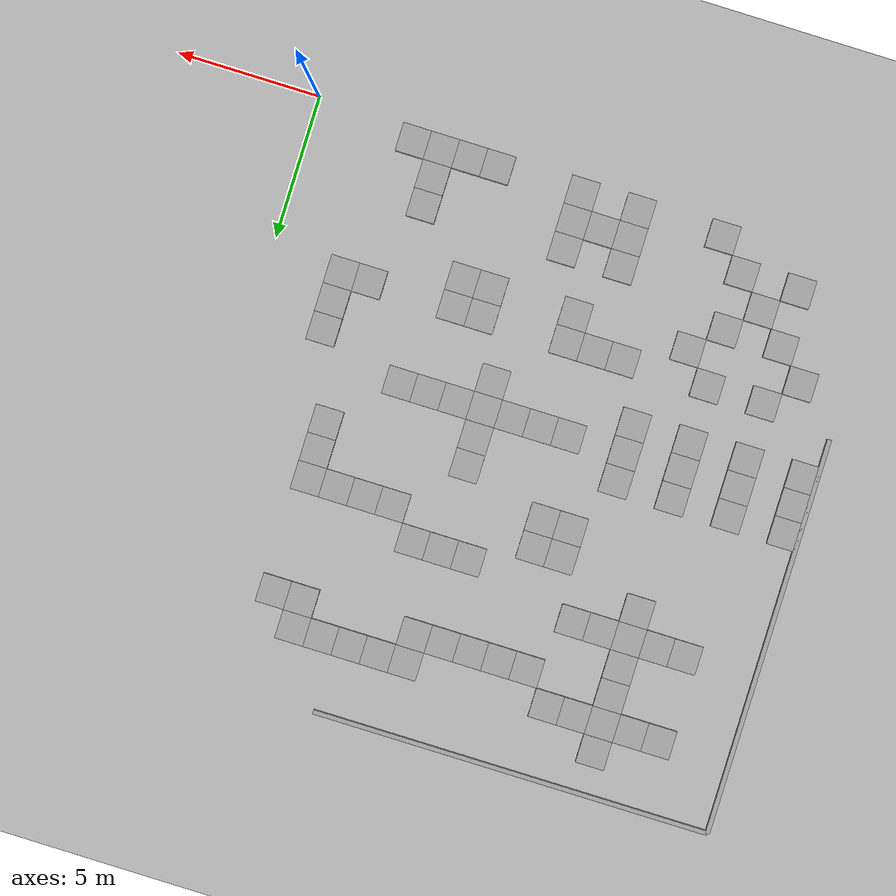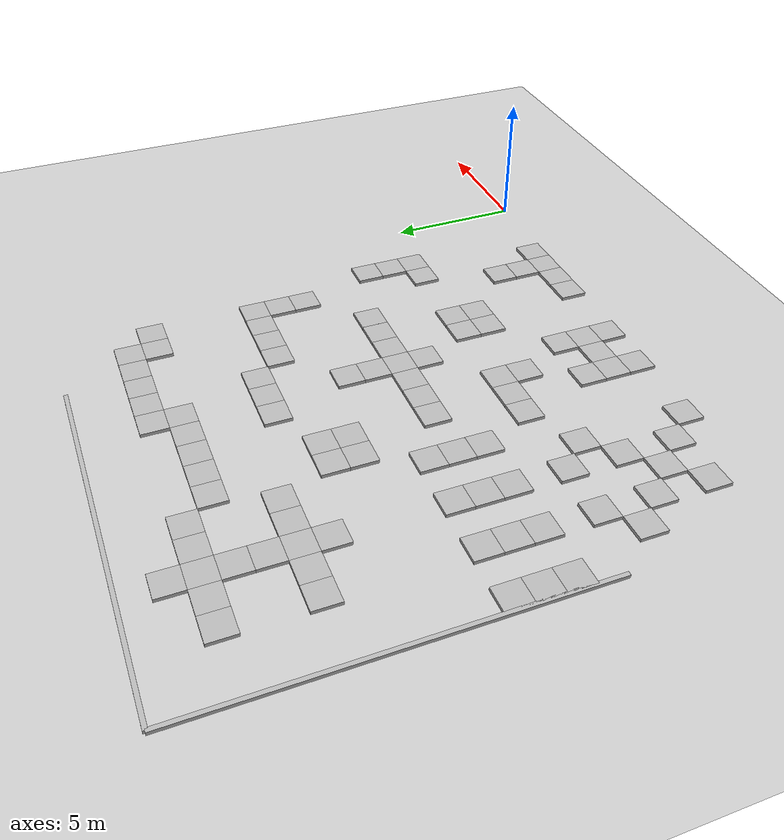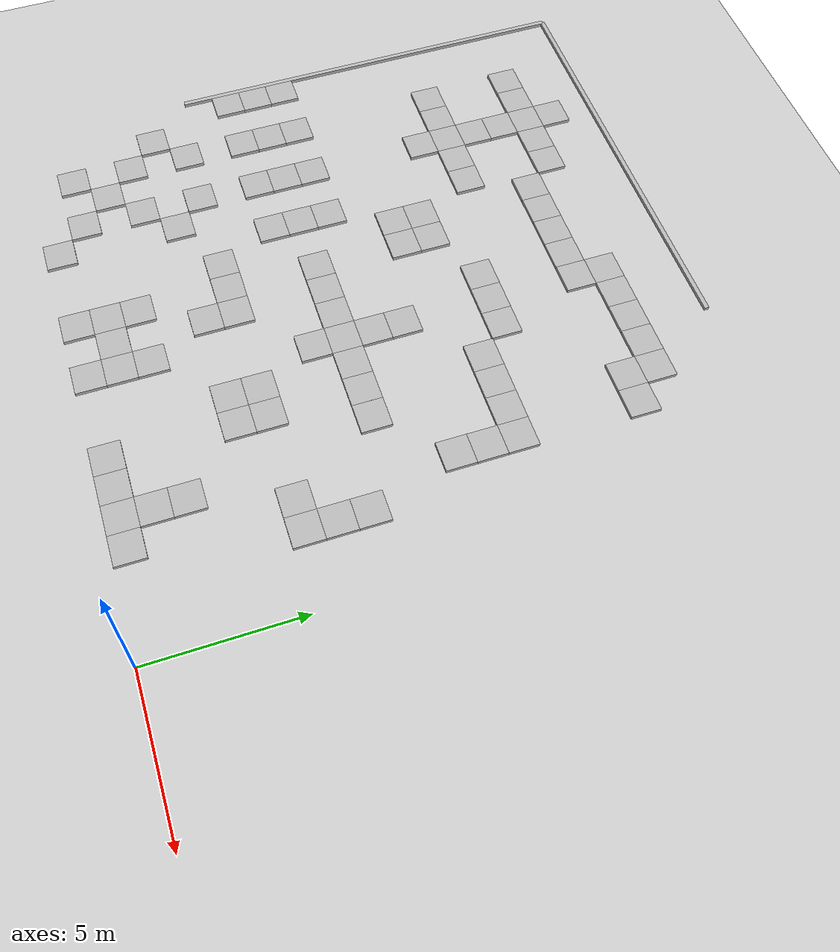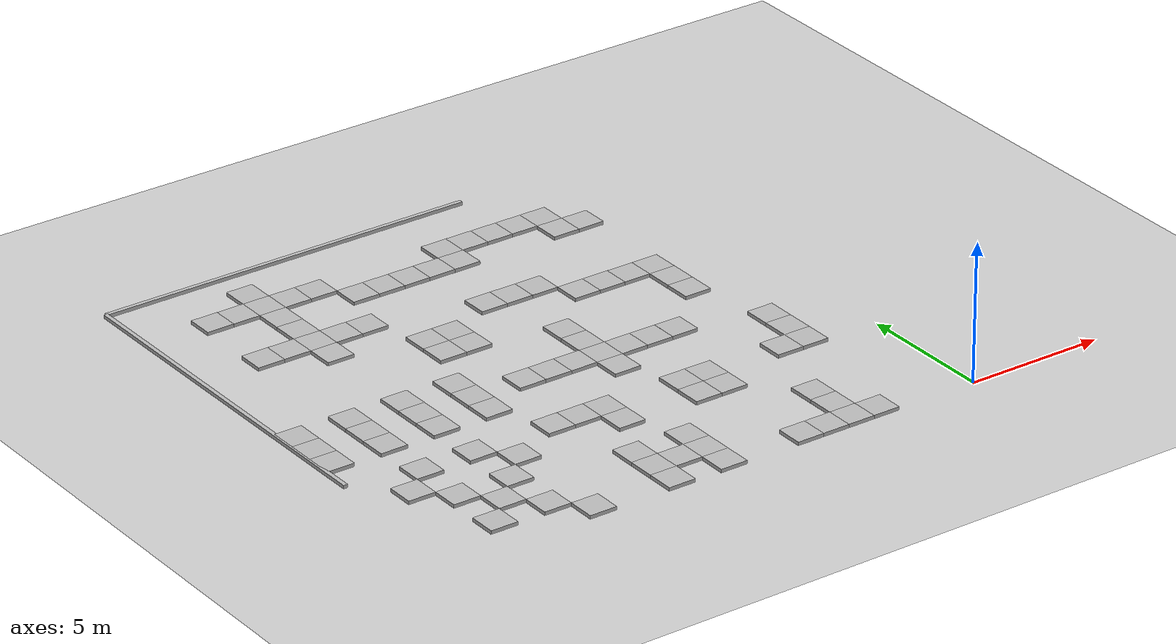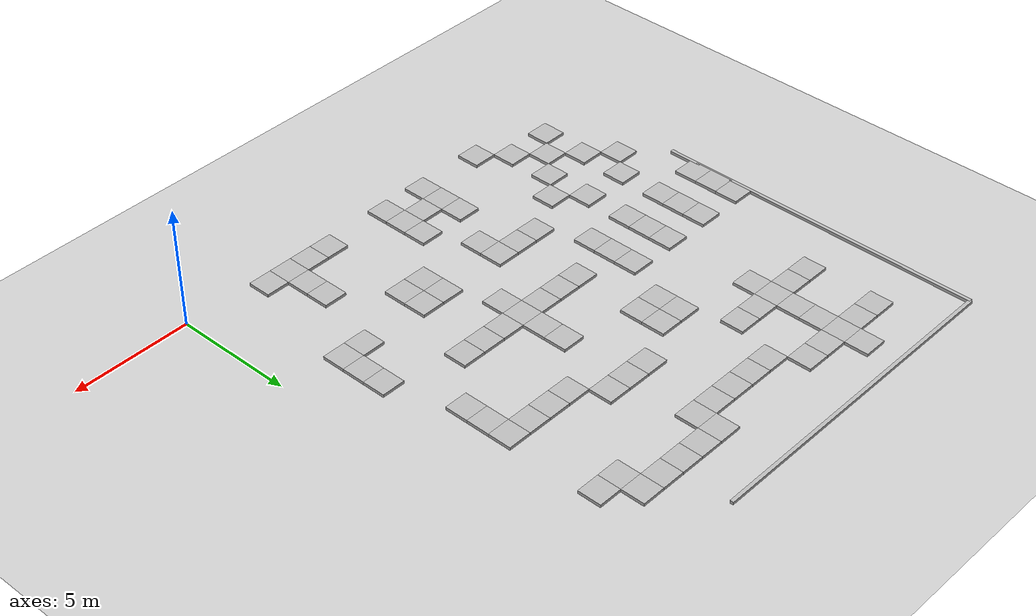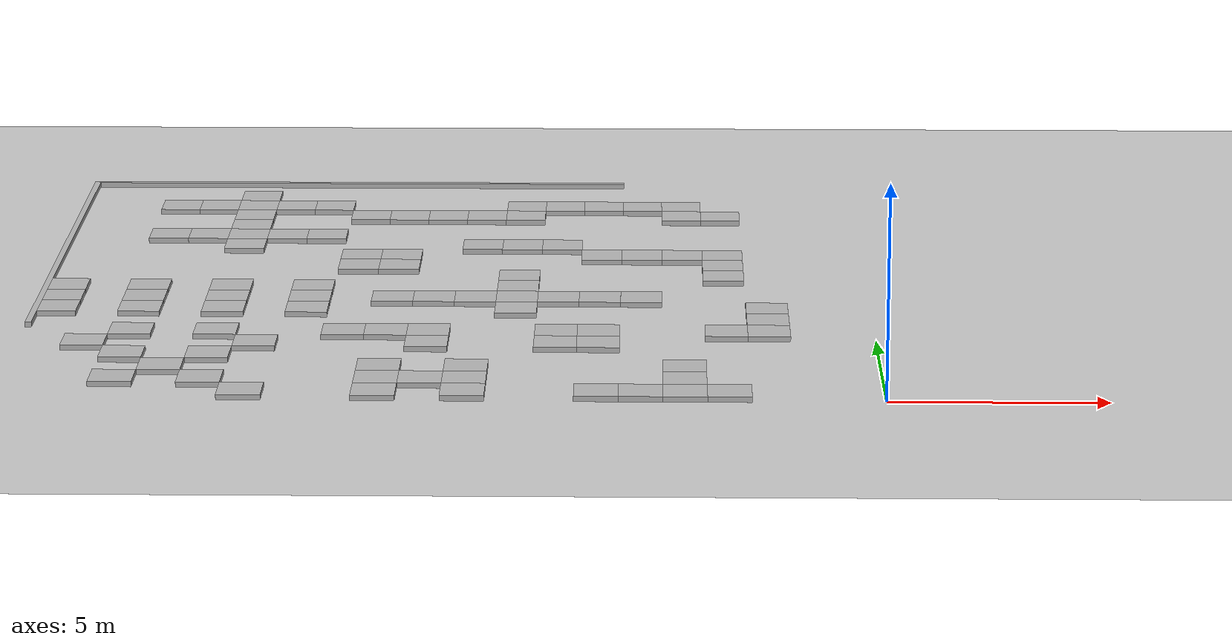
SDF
<sdf version="1.7">
 <world name="default">
  <model name="ground_plane">
   <static>1</static>
   <link name="link">
    <collision name="collision">
     <geometry><plane><normal>0 0 1</normal><size>100 100</size></plane></geometry>
     <surface>
      <contact><collide_bitmask>65535</collide_bitmask></contact>
      <friction><ode><mu>100</mu><mu2>50</mu2></ode></friction>
     </surface>
    </collision>
    <visual name="visual">
     <cast_shadows>0</cast_shadows>
     <geometry><plane><normal>0 0 1</normal><size>100 100</size></plane></geometry>
     <material>
      <script><uri>file://media/materials/scripts/gazebo.material</uri><name>Gazebo/Grey</name></script>
     </material>
    </visual>
   </link>
  </model>
  <model name="concrete_cube_1m">
   <static>1</static>
   <link name="link">
    <collision name="concrete_cube_1m">
     <pose>-0 0 0.3 0 -0 0</pose>
     <geometry><box><size>1 1 0.6</size></box></geometry>
    </collision>
    <visual name="concrete_cube_1m_visual">
     <geometry><mesh><uri>model://concrete_cube_1m/meshes/concrete_cube_1m.dae</uri></mesh></geometry>
    </visual>
   </link>
   <pose>-2.5 6.5 0 0 -0 0</pose>
  </model>
  <model name="concrete_cube_1m_0">
   <static>1</static>
   <link name="link">
    <collision name="concrete_cube_1m">
     <pose>-0 0 0.3 0 -0 0</pose>
     <geometry><box><size>1 1 0.6</size></box></geometry>
    </collision>
    <visual name="concrete_cube_1m_visual">
     <geometry><mesh><uri>model://concrete_cube_1m/meshes/concrete_cube_1m.dae</uri></mesh></geometry>
    </visual>
   </link>
   <pose>-6.5 4.5 0 0 -0 0</pose>
  </model>
  <model name="concrete_cube_1m_1">
   <static>1</static>
   <link name="link">
    <collision name="concrete_cube_1m">
     <pose>-0 0 0.3 0 -0 0</pose>
     <geometry><box><size>1 1 0.6</size></box></geometry>
    </collision>
    <visual name="concrete_cube_1m_visual">
     <geometry><mesh><uri>model://concrete_cube_1m/meshes/concrete_cube_1m.dae</uri></mesh></geometry>
    </visual>
   </link>
   <pose>-2.5 5.5 0 0 -0 0</pose>
  </model>
  <model name="concrete_cube_1m_3">
   <static>1</static>
   <link name="link">
    <collision name="concrete_cube_1m">
     <pose>-0 0 0.3 0 -0 0</pose>
     <geometry><box><size>1 1 0.6</size></box></geometry>
    </collision>
    <visual name="concrete_cube_1m_visual">
     <geometry><mesh><uri>model://concrete_cube_1m/meshes/concrete_cube_1m.dae</uri></mesh></geometry>
    </visual>
   </link>
   <pose>-4.5 0.5 0 0 -0 0</pose>
  </model>
  <model name="concrete_cube_1m_43">
   <static>1</static>
   <link name="link">
    <collision name="concrete_cube_1m">
     <pose>-0 0 0.3 0 -0 0</pose>
     <geometry><box><size>1 1 0.6</size></box></geometry>
    </collision>
    <visual name="concrete_cube_1m_visual">
     <geometry><mesh><uri>model://concrete_cube_1m/meshes/concrete_cube_1m.dae</uri></mesh></geometry>
    </visual>
   </link>
   <pose>-3.5 5.5 0 0 -0 0</pose>
  </model>
  <model name="concrete_cube_1m_44">
   <static>1</static>
   <link name="link">
    <collision name="concrete_cube_1m">
     <pose>-0 0 0.3 0 -0 0</pose>
     <geometry><box><size>1 1 0.6</size></box></geometry>
    </collision>
    <visual name="concrete_cube_1m_visual">
     <geometry><mesh><uri>model://concrete_cube_1m/meshes/concrete_cube_1m.dae</uri></mesh></geometry>
    </visual>
   </link>
   <pose>-2.5 7.5 0 0 -0 0</pose>
  </model>
  <model name="concrete_cube_1m_46">
   <static>1</static>
   <link name="link">
    <collision name="concrete_cube_1m">
     <pose>-0 0 0.3 0 -0 0</pose>
     <geometry><box><size>1 1 0.6</size></box></geometry>
    </collision>
    <visual name="concrete_cube_1m_visual">
     <geometry><mesh><uri>model://concrete_cube_1m/meshes/concrete_cube_1m.dae</uri></mesh></geometry>
    </visual>
   </link>
   <pose>-3.5 0.5 0 0 -0 0</pose>
  </model>
  <model name="concrete_cube_1m_47">
   <static>1</static>
   <link name="link">
    <collision name="concrete_cube_1m">
     <pose>-0 0 0.3 0 -0 0</pose>
     <geometry><box><size>1 1 0.6</size></box></geometry>
    </collision>
    <visual name="concrete_cube_1m_visual">
     <geometry><mesh><uri>model://concrete_cube_1m/meshes/concrete_cube_1m.dae</uri></mesh></geometry>
    </visual>
   </link>
   <pose>-4.5 1.5 0 0 -0 0</pose>
  </model>
  <model name="concrete_cube_1m_48">
   <static>1</static>
   <link name="link">
    <collision name="concrete_cube_1m">
     <pose>-0 0 0.3 0 -0 0</pose>
     <geometry><box><size>1 1 0.6</size></box></geometry>
    </collision>
    <visual name="concrete_cube_1m_visual">
     <geometry><mesh><uri>model://concrete_cube_1m/meshes/concrete_cube_1m.dae</uri></mesh></geometry>
    </visual>
   </link>
   <pose>-4.5 2.5 0 0 -0 0</pose>
  </model>
  <model name="concrete_cube_1m_49">
   <static>1</static>
   <link name="link">
    <collision name="concrete_cube_1m">
     <pose>-0 0 0.3 0 -0 0</pose>
     <geometry><box><size>1 1 0.6</size></box></geometry>
    </collision>
    <visual name="concrete_cube_1m_visual">
     <geometry><mesh><uri>model://concrete_cube_1m/meshes/concrete_cube_1m.dae</uri></mesh></geometry>
    </visual>
   </link>
   <pose>-5.5 0.5 0 0 -0 0</pose>
  </model>
  <model name="concrete_cube_1m_50">
   <static>1</static>
   <link name="link">
    <collision name="concrete_cube_1m">
     <pose>-0 0 0.3 0 -0 0</pose>
     <geometry><box><size>1 1 0.6</size></box></geometry>
    </collision>
    <visual name="concrete_cube_1m_visual">
     <geometry><mesh><uri>model://concrete_cube_1m/meshes/concrete_cube_1m.dae</uri></mesh></geometry>
    </visual>
   </link>
   <pose>-6.5 0.5 0 0 -0 0</pose>
  </model>
  <model name="concrete_cube_1m_51">
   <static>1</static>
   <link name="link">
    <collision name="concrete_cube_1m">
     <pose>-0 0 0.3 0 -0 0</pose>
     <geometry><box><size>1 1 0.6</size></box></geometry>
    </collision>
    <visual name="concrete_cube_1m_visual">
     <geometry><mesh><uri>model://concrete_cube_1m/meshes/concrete_cube_1m.dae</uri></mesh></geometry>
    </visual>
   </link>
   <pose>-6.5 5.5 0 0 -0 0</pose>
  </model>
  <model name="concrete_cube_1m_52">
   <static>1</static>
   <link name="link">
    <collision name="concrete_cube_1m">
     <pose>-0 0 0.3 0 -0 0</pose>
     <geometry><box><size>1 1 0.6</size></box></geometry>
    </collision>
    <visual name="concrete_cube_1m_visual">
     <geometry><mesh><uri>model://concrete_cube_1m/meshes/concrete_cube_1m.dae</uri></mesh></geometry>
    </visual>
   </link>
   <pose>-7.5 4.5 0 0 -0 0</pose>
  </model>
  <model name="concrete_cube_1m_53">
   <static>1</static>
   <link name="link">
    <collision name="concrete_cube_1m">
     <pose>-0 0 0.3 0 -0 0</pose>
     <geometry><box><size>1 1 0.6</size></box></geometry>
    </collision>
    <visual name="concrete_cube_1m_visual">
     <geometry><mesh><uri>model://concrete_cube_1m/meshes/concrete_cube_1m.dae</uri></mesh></geometry>
    </visual>
   </link>
   <pose>-7.5 5.5 0 0 -0 0</pose>
  </model>
  <model name="concrete_cube_1m_54">
   <static>1</static>
   <link name="link">
    <collision name="concrete_cube_1m">
     <pose>-0 0 0.3 0 -0 0</pose>
     <geometry><box><size>1 1 0.6</size></box></geometry>
    </collision>
    <visual name="concrete_cube_1m_visual">
     <geometry><mesh><uri>model://concrete_cube_1m/meshes/concrete_cube_1m.dae</uri></mesh></geometry>
    </visual>
   </link>
   <pose>-8.5 8.5 0 0 -0 0</pose>
  </model>
  <model name="concrete_cube_1m_55">
   <static>1</static>
   <link name="link">
    <collision name="concrete_cube_1m">
     <pose>-0 0 0.3 0 -0 0</pose>
     <geometry><box><size>1 1 0.6</size></box></geometry>
    </collision>
    <visual name="concrete_cube_1m_visual">
     <geometry><mesh><uri>model://concrete_cube_1m/meshes/concrete_cube_1m.dae</uri></mesh></geometry>
    </visual>
   </link>
   <pose>-8.5 7.5 0 0 -0 0</pose>
  </model>
  <model name="concrete_cube_1m_56">
   <static>1</static>
   <link name="link">
    <collision name="concrete_cube_1m">
     <pose>-0 0 0.3 0 -0 0</pose>
     <geometry><box><size>1 1 0.6</size></box></geometry>
    </collision>
    <visual name="concrete_cube_1m_visual">
     <geometry><mesh><uri>model://concrete_cube_1m/meshes/concrete_cube_1m.dae</uri></mesh></geometry>
    </visual>
   </link>
   <pose>-7.5 8.5 0 0 -0 0</pose>
  </model>
  <model name="concrete_cube_1m_57">
   <static>1</static>
   <link name="link">
    <collision name="concrete_cube_1m">
     <pose>-0 0 0.3 0 -0 0</pose>
     <geometry><box><size>1 1 0.6</size></box></geometry>
    </collision>
    <visual name="concrete_cube_1m_visual">
     <geometry><mesh><uri>model://concrete_cube_1m/meshes/concrete_cube_1m.dae</uri></mesh></geometry>
    </visual>
   </link>
   <pose>-6.50041 8.5 0 0 -0 0</pose>
  </model>
  <model name="concrete_cube_1m_58">
   <static>1</static>
   <link name="link">
    <collision name="concrete_cube_1m">
     <pose>-0 0 0.3 0 -0 0</pose>
     <geometry><box><size>1 1 0.6</size></box></geometry>
    </collision>
    <visual name="concrete_cube_1m_visual">
     <geometry><mesh><uri>model://concrete_cube_1m/meshes/concrete_cube_1m.dae</uri></mesh></geometry>
    </visual>
   </link>
   <pose>-5.5 8.5 0 0 -0 0</pose>
  </model>
  <model name="concrete_cube_1m_60">
   <static>1</static>
   <link name="link">
    <collision name="concrete_cube_1m">
     <pose>-0 0 0.3 0 -0 0</pose>
     <geometry><box><size>1 1 0.6</size></box></geometry>
    </collision>
    <visual name="concrete_cube_1m_visual">
     <geometry><mesh><uri>model://concrete_cube_1m/meshes/concrete_cube_1m.dae</uri></mesh></geometry>
    </visual>
   </link>
   <pose>-9.5 1.5 0 0 -0 0</pose>
  </model>
  <model name="concrete_cube_1m_61">
   <static>1</static>
   <link name="link">
    <collision name="concrete_cube_1m">
     <pose>-0 0 0.3 0 -0 0</pose>
     <geometry><box><size>1 1 0.6</size></box></geometry>
    </collision>
    <visual name="concrete_cube_1m_visual">
     <geometry><mesh><uri>model://concrete_cube_1m/meshes/concrete_cube_1m.dae</uri></mesh></geometry>
    </visual>
   </link>
   <pose>-9.5 2.5 0 0 -0 0</pose>
  </model>
  <model name="concrete_cube_1m_62">
   <static>1</static>
   <link name="link">
    <collision name="concrete_cube_1m">
     <pose>-0 0 0.3 0 -0 0</pose>
     <geometry><box><size>1 1 0.6</size></box></geometry>
    </collision>
    <visual name="concrete_cube_1m_visual">
     <geometry><mesh><uri>model://concrete_cube_1m/meshes/concrete_cube_1m.dae</uri></mesh></geometry>
    </visual>
   </link>
   <pose>-9.5 0.5 0 0 -0 0</pose>
  </model>
  <model name="concrete_cube_1m_110">
   <static>1</static>
   <link name="link">
    <collision name="concrete_cube_1m">
     <pose>-0 0 0.3 0 -0 0</pose>
     <geometry><box><size>1 1 0.6</size></box></geometry>
    </collision>
    <visual name="concrete_cube_1m_visual">
     <geometry><mesh><uri>model://concrete_cube_1m/meshes/concrete_cube_1m.dae</uri></mesh></geometry>
    </visual>
   </link>
   <pose>-14.5 0.5 0 0 -0 0</pose>
  </model>
  <model name="concrete_cube_1m_111">
   <static>1</static>
   <link name="link">
    <collision name="concrete_cube_1m">
     <pose>-0 0 0.3 0 -0 0</pose>
     <geometry><box><size>1 1 0.6</size></box></geometry>
    </collision>
    <visual name="concrete_cube_1m_visual">
     <geometry><mesh><uri>model://concrete_cube_1m/meshes/concrete_cube_1m.dae</uri></mesh></geometry>
    </visual>
   </link>
   <pose>-14.5 14.5 0 0 -0 0</pose>
  </model>
  <model name="concrete_cube_1m_112">
   <static>1</static>
   <link name="link">
    <collision name="concrete_cube_1m">
     <pose>-0 0 0.3 0 -0 0</pose>
     <geometry><box><size>1 1 0.6</size></box></geometry>
    </collision>
    <visual name="concrete_cube_1m_visual">
     <geometry><mesh><uri>model://concrete_cube_1m/meshes/concrete_cube_1m.dae</uri></mesh></geometry>
    </visual>
   </link>
   <pose>-13.5 14.5 0 0 -0 0</pose>
  </model>
  <model name="concrete_cube_1m_152">
   <static>1</static>
   <link name="link">
    <collision name="concrete_cube_1m">
     <pose>-0 0 0.3 0 -0 0</pose>
     <geometry><box><size>1 1 0.6</size></box></geometry>
    </collision>
    <visual name="concrete_cube_1m_visual">
     <geometry><mesh><uri>model://concrete_cube_1m/meshes/concrete_cube_1m.dae</uri></mesh></geometry>
    </visual>
   </link>
   <pose>-10.5 1.5 0 0 -0 0</pose>
  </model>
  <model name="concrete_cube_1m_153">
   <static>1</static>
   <link name="link">
    <collision name="concrete_cube_1m">
     <pose>-0 0 0.3 0 -0 0</pose>
     <geometry><box><size>1 1 0.6</size></box></geometry>
    </collision>
    <visual name="concrete_cube_1m_visual">
     <geometry><mesh><uri>model://concrete_cube_1m/meshes/concrete_cube_1m.dae</uri></mesh></geometry>
    </visual>
   </link>
   <pose>-11.5 1.5 0 0 -0 0</pose>
  </model>
  <model name="concrete_cube_1m_154">
   <static>1</static>
   <link name="link">
    <collision name="concrete_cube_1m">
     <pose>-0 0 0.3 0 -0 0</pose>
     <geometry><box><size>1 1 0.6</size></box></geometry>
    </collision>
    <visual name="concrete_cube_1m_visual">
     <geometry><mesh><uri>model://concrete_cube_1m/meshes/concrete_cube_1m.dae</uri></mesh></geometry>
    </visual>
   </link>
   <pose>-11.5 2.5 0 0 -0 0</pose>
  </model>
  <model name="concrete_cube_1m_155">
   <static>1</static>
   <link name="link">
    <collision name="concrete_cube_1m">
     <pose>-0 0 0.3 0 -0 0</pose>
     <geometry><box><size>1 1 0.6</size></box></geometry>
    </collision>
    <visual name="concrete_cube_1m_visual">
     <geometry><mesh><uri>model://concrete_cube_1m/meshes/concrete_cube_1m.dae</uri></mesh></geometry>
    </visual>
   </link>
   <pose>-11.5 5.5 0 0 -0 0</pose>
  </model>
  <model name="concrete_cube_1m_156">
   <static>1</static>
   <link name="link">
    <collision name="concrete_cube_1m">
     <pose>-0 0 0.3 0 -0 0</pose>
     <geometry><box><size>1 1 0.6</size></box></geometry>
    </collision>
    <visual name="concrete_cube_1m_visual">
     <geometry><mesh><uri>model://concrete_cube_1m/meshes/concrete_cube_1m.dae</uri></mesh></geometry>
    </visual>
   </link>
   <pose>-8.5 9.5 0 0 -0 0</pose>
  </model>
  <model name="concrete_cube_1m_157">
   <static>1</static>
   <link name="link">
    <collision name="concrete_cube_1m">
     <pose>-0 0 0.3 0 -0 0</pose>
     <geometry><box><size>1 1 0.6</size></box></geometry>
    </collision>
    <visual name="concrete_cube_1m_visual">
     <geometry><mesh><uri>model://concrete_cube_1m/meshes/concrete_cube_1m.dae</uri></mesh></geometry>
    </visual>
   </link>
   <pose>-9.5 8.5 0 0 -0 0</pose>
  </model>
  <model name="concrete_cube_1m_158">
   <static>1</static>
   <link name="link">
    <collision name="concrete_cube_1m">
     <pose>-0 0 0.3 0 -0 0</pose>
     <geometry><box><size>1 1 0.6</size></box></geometry>
    </collision>
    <visual name="concrete_cube_1m_visual">
     <geometry><mesh><uri>model://concrete_cube_1m/meshes/concrete_cube_1m.dae</uri></mesh></geometry>
    </visual>
   </link>
   <pose>-10.5 8.5 0 0 -0 0</pose>
  </model>
  <model name="concrete_cube_1m_159">
   <static>1</static>
   <link name="link">
    <collision name="concrete_cube_1m">
     <pose>-0 0 0.3 0 -0 0</pose>
     <geometry><box><size>1 1 0.6</size></box></geometry>
    </collision>
    <visual name="concrete_cube_1m_visual">
     <geometry><mesh><uri>model://concrete_cube_1m/meshes/concrete_cube_1m.dae</uri></mesh></geometry>
    </visual>
   </link>
   <pose>-11.5 8.5 0 0 -0 0</pose>
  </model>
  <model name="concrete_cube_1m_163">
   <static>1</static>
   <link name="link">
    <collision name="concrete_cube_1m">
     <pose>-0 0 0.3 0 -0 0</pose>
     <geometry><box><size>1 1 0.6</size></box></geometry>
    </collision>
    <visual name="concrete_cube_1m_visual">
     <geometry><mesh><uri>model://concrete_cube_1m/meshes/concrete_cube_1m.dae</uri></mesh></geometry>
    </visual>
   </link>
   <pose>-3.5 10.5 0 0 -0 0</pose>
  </model>
  <model name="concrete_cube_1m_164">
   <static>1</static>
   <link name="link">
    <collision name="concrete_cube_1m">
     <pose>-0 0 0.3 0 -0 0</pose>
     <geometry><box><size>1 1 0.6</size></box></geometry>
    </collision>
    <visual name="concrete_cube_1m_visual">
     <geometry><mesh><uri>model://concrete_cube_1m/meshes/concrete_cube_1m.dae</uri></mesh></geometry>
    </visual>
   </link>
   <pose>-3.5 11.5 0 0 -0 0</pose>
  </model>
  <model name="concrete_cube_1m_165">
   <static>1</static>
   <link name="link">
    <collision name="concrete_cube_1m">
     <pose>-0 0 0.3 0 -0 0</pose>
     <geometry><box><size>1 1 0.6</size></box></geometry>
    </collision>
    <visual name="concrete_cube_1m_visual">
     <geometry><mesh><uri>model://concrete_cube_1m/meshes/concrete_cube_1m.dae</uri></mesh></geometry>
    </visual>
   </link>
   <pose>-3.5 12.5 0 0 -0 0</pose>
  </model>
  <model name="concrete_cube_1m_166">
   <static>1</static>
   <link name="link">
    <collision name="concrete_cube_1m">
     <pose>-0 0 0.3 0 -0 0</pose>
     <geometry><box><size>1 1 0.6</size></box></geometry>
    </collision>
    <visual name="concrete_cube_1m_visual">
     <geometry><mesh><uri>model://concrete_cube_1m/meshes/concrete_cube_1m.dae</uri></mesh></geometry>
    </visual>
   </link>
   <pose>-4.5 12.5 0 0 -0 0</pose>
  </model>
  <model name="concrete_cube_1m_167">
   <static>1</static>
   <link name="link">
    <collision name="concrete_cube_1m">
     <pose>-0 0 0.3 0 -0 0</pose>
     <geometry><box><size>1 1 0.6</size></box></geometry>
    </collision>
    <visual name="concrete_cube_1m_visual">
     <geometry><mesh><uri>model://concrete_cube_1m/meshes/concrete_cube_1m.dae</uri></mesh></geometry>
    </visual>
   </link>
   <pose>-5.5 12.5 0 0 -0 0</pose>
  </model>
  <model name="concrete_cube_1m_168">
   <static>1</static>
   <link name="link">
    <collision name="concrete_cube_1m">
     <pose>-0 0 0.3 0 -0 0</pose>
     <geometry><box><size>1 1 0.6</size></box></geometry>
    </collision>
    <visual name="concrete_cube_1m_visual">
     <geometry><mesh><uri>model://concrete_cube_1m/meshes/concrete_cube_1m.dae</uri></mesh></geometry>
    </visual>
   </link>
   <pose>-6.5 12.5 0 0 -0 0</pose>
  </model>
  <model name="concrete_cube_1m_169">
   <static>1</static>
   <link name="link">
    <collision name="concrete_cube_1m">
     <pose>-0 0 0.3 0 -0 0</pose>
     <geometry><box><size>1 1 0.6</size></box></geometry>
    </collision>
    <visual name="concrete_cube_1m_visual">
     <geometry><mesh><uri>model://concrete_cube_1m/meshes/concrete_cube_1m.dae</uri></mesh></geometry>
    </visual>
   </link>
   <pose>-12.5 5.5 0 0 -0 0</pose>
  </model>
  <model name="concrete_cube_1m_170">
   <static>1</static>
   <link name="link">
    <collision name="concrete_cube_1m">
     <pose>-0 0 0.3 0 -0 0</pose>
     <geometry><box><size>1 1 0.6</size></box></geometry>
    </collision>
    <visual name="concrete_cube_1m_visual">
     <geometry><mesh><uri>model://concrete_cube_1m/meshes/concrete_cube_1m.dae</uri></mesh></geometry>
    </visual>
   </link>
   <pose>-11.5 11.5 0 0 -0 0</pose>
  </model>
  <model name="concrete_cube_1m_171">
   <static>1</static>
   <link name="link">
    <collision name="concrete_cube_1m">
     <pose>-0 0 0.3 0 -0 0</pose>
     <geometry><box><size>1 1 0.6</size></box></geometry>
    </collision>
    <visual name="concrete_cube_1m_visual">
     <geometry><mesh><uri>model://concrete_cube_1m/meshes/concrete_cube_1m.dae</uri></mesh></geometry>
    </visual>
   </link>
   <pose>-11.5 12.5 0 0 -0 0</pose>
  </model>
  <model name="concrete_cube_1m_172">
   <static>1</static>
   <link name="link">
    <collision name="concrete_cube_1m">
     <pose>-0 0 0.3 0 -0 0</pose>
     <geometry><box><size>1 1 0.6</size></box></geometry>
    </collision>
    <visual name="concrete_cube_1m_visual">
     <geometry><mesh><uri>model://concrete_cube_1m/meshes/concrete_cube_1m.dae</uri></mesh></geometry>
    </visual>
   </link>
   <pose>-12.5 11.5 0 0 -0 0</pose>
  </model>
  <model name="concrete_cube_1m_173">
   <static>1</static>
   <link name="link">
    <collision name="concrete_cube_1m">
     <pose>-0 0 0.3 0 -0 0</pose>
     <geometry><box><size>1 1 0.6</size></box></geometry>
    </collision>
    <visual name="concrete_cube_1m_visual">
     <geometry><mesh><uri>model://concrete_cube_1m/meshes/concrete_cube_1m.dae</uri></mesh></geometry>
    </visual>
   </link>
   <pose>-12.5 12.5 0 0 -0 0</pose>
  </model>
  <model name="concrete_cube_1m_174">
   <static>1</static>
   <link name="link">
    <collision name="concrete_cube_1m">
     <pose>-0 0 0.3 0 -0 0</pose>
     <geometry><box><size>1 1 0.6</size></box></geometry>
    </collision>
    <visual name="concrete_cube_1m_visual">
     <geometry><mesh><uri>model://concrete_cube_1m/meshes/concrete_cube_1m.dae</uri></mesh></geometry>
    </visual>
   </link>
   <pose>-13.5 7.5 0 0 -0 0</pose>
  </model>
  <model name="concrete_cube_1m_175">
   <static>1</static>
   <link name="link">
    <collision name="concrete_cube_1m">
     <pose>-0 0 0.3 0 -0 0</pose>
     <geometry><box><size>1 1 0.6</size></box></geometry>
    </collision>
    <visual name="concrete_cube_1m_visual">
     <geometry><mesh><uri>model://concrete_cube_1m/meshes/concrete_cube_1m.dae</uri></mesh></geometry>
    </visual>
   </link>
   <pose>-13.5 8.5 0 0 -0 0</pose>
  </model>
  <model name="concrete_cube_1m_176">
   <static>1</static>
   <link name="link">
    <collision name="concrete_cube_1m">
     <pose>-0 0 0.3 0 -0 0</pose>
     <geometry><box><size>1 1 0.6</size></box></geometry>
    </collision>
    <visual name="concrete_cube_1m_visual">
     <geometry><mesh><uri>model://concrete_cube_1m/meshes/concrete_cube_1m.dae</uri></mesh></geometry>
    </visual>
   </link>
   <pose>-13.5 9.5 0 0 -0 0</pose>
  </model>
  <model name="concrete_cube_1m_177">
   <static>1</static>
   <link name="link">
    <collision name="concrete_cube_1m">
     <pose>-0 0 0.3 0 -0 0</pose>
     <geometry><box><size>1 1 0.6</size></box></geometry>
    </collision>
    <visual name="concrete_cube_1m_visual">
     <geometry><mesh><uri>model://concrete_cube_1m/meshes/concrete_cube_1m.dae</uri></mesh></geometry>
    </visual>
   </link>
   <pose>-8.5 13.5 0 0 -0 0</pose>
  </model>
  <model name="concrete_cube_1m_178">
   <static>1</static>
   <link name="link">
    <collision name="concrete_cube_1m">
     <pose>-0 0 0.3 0 -0 0</pose>
     <geometry><box><size>1 1 0.6</size></box></geometry>
    </collision>
    <visual name="concrete_cube_1m_visual">
     <geometry><mesh><uri>model://concrete_cube_1m/meshes/concrete_cube_1m.dae</uri></mesh></geometry>
    </visual>
   </link>
   <pose>-9.5 13.5 0 0 -0 0</pose>
  </model>
  <model name="concrete_cube_1m_179">
   <static>1</static>
   <link name="link">
    <collision name="concrete_cube_1m">
     <pose>-0 0 0.3 0 -0 0</pose>
     <geometry><box><size>1 1 0.6</size></box></geometry>
    </collision>
    <visual name="concrete_cube_1m_visual">
     <geometry><mesh><uri>model://concrete_cube_1m/meshes/concrete_cube_1m.dae</uri></mesh></geometry>
    </visual>
   </link>
   <pose>-8.5 10.5 0 0 -0 0</pose>
  </model>
  <model name="concrete_cube_1m_198">
   <static>1</static>
   <link name="link">
    <collision name="concrete_cube_1m">
     <pose>-0 0 0.3 0 -0 0</pose>
     <geometry><box><size>1 1 0.6</size></box></geometry>
    </collision>
    <visual name="concrete_cube_1m_visual">
     <geometry><mesh><uri>model://concrete_cube_1m/meshes/concrete_cube_1m.dae</uri></mesh></geometry>
    </visual>
   </link>
   <pose>-7.5 13.5 0 0 -0 0</pose>
  </model>
  <model name="concrete_cube_1m_210">
   <static>1</static>
   <link name="link">
    <collision name="concrete_cube_1m">
     <pose>-0 0 0.3 0 -0 0</pose>
     <geometry><box><size>1 1 0.6</size></box></geometry>
    </collision>
    <visual name="concrete_cube_1m_visual">
     <geometry><mesh><uri>model://concrete_cube_1m/meshes/concrete_cube_1m.dae</uri></mesh></geometry>
    </visual>
   </link>
   <pose>-11.5 0.5 0 0 -0 0</pose>
  </model>
  <model name="concrete_barrier_14m_10">
   <static>1</static>
   <link name="link">
    <collision name="concrete_barrier_14m_01">
     <pose>-0 0 0.3 0 -0 0</pose>
     <geometry><box><size>14 0.15 0.6</size></box></geometry>
    </collision>
    <visual name="concrete_barrier_14m_visual">
     <geometry><mesh><uri>model://concrete_barrier_14m/meshes/concrete_barrier_14m.dae</uri></mesh></geometry>
    </visual>
   </link>
   <pose>-20 13 0 0 -0 0</pose>
  </model>
  <model name="concrete_barrier_14m_4_clone_0">
   <static>1</static>
   <link name="link">
    <collision name="concrete_barrier_14m_01">
     <pose>-0 0 0.3 0 -0 0</pose>
     <geometry><box><size>14 0.15 0.6</size></box></geometry>
    </collision>
    <visual name="concrete_barrier_14m_visual">
     <geometry><mesh><uri>model://concrete_barrier_14m/meshes/concrete_barrier_14m.dae</uri></mesh></geometry>
    </visual>
   </link>
   <pose>-13 20 0 0 0 -1.56953</pose>
  </model>
  <model name="concrete_cube_1m_308">
   <static>1</static>
   <link name="link">
    <collision name="concrete_cube_1m">
     <pose>-0 0 0.3 0 -0 0</pose>
     <geometry><box><size>1 1 0.6</size></box></geometry>
    </collision>
    <visual name="concrete_cube_1m_visual">
     <geometry><mesh><uri>model://concrete_cube_1m/meshes/concrete_cube_1m.dae</uri></mesh></geometry>
    </visual>
   </link>
   <pose>-3.5 16.5 0 0 -0 0</pose>
  </model>
  <model name="concrete_cube_1m_309">
   <static>1</static>
   <link name="link">
    <collision name="concrete_cube_1m">
     <pose>-0 0 0.3 0 -0 0</pose>
     <geometry><box><size>1 1 0.6</size></box></geometry>
    </collision>
    <visual name="concrete_cube_1m_visual">
     <geometry><mesh><uri>model://concrete_cube_1m/meshes/concrete_cube_1m.dae</uri></mesh></geometry>
    </visual>
   </link>
   <pose>-4.5 16.5 0 0 -0 0</pose>
  </model>
  <model name="concrete_cube_1m_310">
   <static>1</static>
   <link name="link">
    <collision name="concrete_cube_1m">
     <pose>-0 0 0.3 0 -0 0</pose>
     <geometry><box><size>1 1 0.6</size></box></geometry>
    </collision>
    <visual name="concrete_cube_1m_visual">
     <geometry><mesh><uri>model://concrete_cube_1m/meshes/concrete_cube_1m.dae</uri></mesh></geometry>
    </visual>
   </link>
   <pose>-4.5 17.5 0 0 -0 0</pose>
  </model>
  <model name="concrete_cube_1m_311">
   <static>1</static>
   <link name="link">
    <collision name="concrete_cube_1m">
     <pose>-0 0 0.3 0 -0 0</pose>
     <geometry><box><size>1 1 0.6</size></box></geometry>
    </collision>
    <visual name="concrete_cube_1m_visual">
     <geometry><mesh><uri>model://concrete_cube_1m/meshes/concrete_cube_1m.dae</uri></mesh></geometry>
    </visual>
   </link>
   <pose>-5.5 17.5 0 0 -0 0</pose>
  </model>
  <model name="concrete_cube_1m_312">
   <static>1</static>
   <link name="link">
    <collision name="concrete_cube_1m">
     <pose>-0 0 0.3 0 -0 0</pose>
     <geometry><box><size>1 1 0.6</size></box></geometry>
    </collision>
    <visual name="concrete_cube_1m_visual">
     <geometry><mesh><uri>model://concrete_cube_1m/meshes/concrete_cube_1m.dae</uri></mesh></geometry>
    </visual>
   </link>
   <pose>-6.5 17.5 0 0 -0 0</pose>
  </model>
  <model name="concrete_cube_1m_313">
   <static>1</static>
   <link name="link">
    <collision name="concrete_cube_1m">
     <pose>-0 0 0.3 0 -0 0</pose>
     <geometry><box><size>1 1 0.6</size></box></geometry>
    </collision>
    <visual name="concrete_cube_1m_visual">
     <geometry><mesh><uri>model://concrete_cube_1m/meshes/concrete_cube_1m.dae</uri></mesh></geometry>
    </visual>
   </link>
   <pose>-7.5 17.5 0 0 -0 0</pose>
  </model>
  <model name="concrete_cube_1m_314">
   <static>1</static>
   <link name="link">
    <collision name="concrete_cube_1m">
     <pose>-0 0 0.3 0 -0 0</pose>
     <geometry><box><size>1 1 0.6</size></box></geometry>
    </collision>
    <visual name="concrete_cube_1m_visual">
     <geometry><mesh><uri>model://concrete_cube_1m/meshes/concrete_cube_1m.dae</uri></mesh></geometry>
    </visual>
   </link>
   <pose>-8.5 17.5 0 0 -0 0</pose>
  </model>
  <model name="concrete_cube_1m_315">
   <static>1</static>
   <link name="link">
    <collision name="concrete_cube_1m">
     <pose>-0 0 0.3 0 -0 0</pose>
     <geometry><box><size>1 1 0.6</size></box></geometry>
    </collision>
    <visual name="concrete_cube_1m_visual">
     <geometry><mesh><uri>model://concrete_cube_1m/meshes/concrete_cube_1m.dae</uri></mesh></geometry>
    </visual>
   </link>
   <pose>-8.5 16.5 0 0 -0 0</pose>
  </model>
  <model name="concrete_cube_1m_316">
   <static>1</static>
   <link name="link">
    <collision name="concrete_cube_1m">
     <pose>-0 0 0.3 0 -0 0</pose>
     <geometry><box><size>1 1 0.6</size></box></geometry>
    </collision>
    <visual name="concrete_cube_1m_visual">
     <geometry><mesh><uri>model://concrete_cube_1m/meshes/concrete_cube_1m.dae</uri></mesh></geometry>
    </visual>
   </link>
   <pose>-9.5 16.5 0 0 -0 0</pose>
  </model>
  <model name="concrete_cube_1m_317">
   <static>1</static>
   <link name="link">
    <collision name="concrete_cube_1m">
     <pose>-0 0 0.3 0 -0 0</pose>
     <geometry><box><size>1 1 0.6</size></box></geometry>
    </collision>
    <visual name="concrete_cube_1m_visual">
     <geometry><mesh><uri>model://concrete_cube_1m/meshes/concrete_cube_1m.dae</uri></mesh></geometry>
    </visual>
   </link>
   <pose>-10.5 16.5 0 0 -0 0</pose>
  </model>
  <model name="concrete_cube_1m_318">
   <static>1</static>
   <link name="link">
    <collision name="concrete_cube_1m">
     <pose>-0 0 0.3 0 -0 0</pose>
     <geometry><box><size>1 1 0.6</size></box></geometry>
    </collision>
    <visual name="concrete_cube_1m_visual">
     <geometry><mesh><uri>model://concrete_cube_1m/meshes/concrete_cube_1m.dae</uri></mesh></geometry>
    </visual>
   </link>
   <pose>-11.5 16.5 0 0 -0 0</pose>
  </model>
  <model name="concrete_cube_1m_319">
   <static>1</static>
   <link name="link">
    <collision name="concrete_cube_1m">
     <pose>-0 0 0.3 0 -0 0</pose>
     <geometry><box><size>1 1 0.6</size></box></geometry>
    </collision>
    <visual name="concrete_cube_1m_visual">
     <geometry><mesh><uri>model://concrete_cube_1m/meshes/concrete_cube_1m.dae</uri></mesh></geometry>
    </visual>
   </link>
   <pose>-12.5 16.5 0 0 -0 0</pose>
  </model>
  <model name="concrete_cube_1m_320">
   <static>1</static>
   <link name="link">
    <collision name="concrete_cube_1m">
     <pose>-0 0 0.3 0 -0 0</pose>
     <geometry><box><size>1 1 0.6</size></box></geometry>
    </collision>
    <visual name="concrete_cube_1m_visual">
     <geometry><mesh><uri>model://concrete_cube_1m/meshes/concrete_cube_1m.dae</uri></mesh></geometry>
    </visual>
   </link>
   <pose>-15.5 7.5 0 0 -0 0</pose>
  </model>
  <model name="concrete_cube_1m_321">
   <static>1</static>
   <link name="link">
    <collision name="concrete_cube_1m">
     <pose>-0 0 0.3 0 -0 0</pose>
     <geometry><box><size>1 1 0.6</size></box></geometry>
    </collision>
    <visual name="concrete_cube_1m_visual">
     <geometry><mesh><uri>model://concrete_cube_1m/meshes/concrete_cube_1m.dae</uri></mesh></geometry>
    </visual>
   </link>
   <pose>-15.5 8.5 0 0 -0 0</pose>
  </model>
  <model name="concrete_cube_1m_322">
   <static>1</static>
   <link name="link">
    <collision name="concrete_cube_1m">
     <pose>-0 0 0.3 0 -0 0</pose>
     <geometry><box><size>1 1 0.6</size></box></geometry>
    </collision>
    <visual name="concrete_cube_1m_visual">
     <geometry><mesh><uri>model://concrete_cube_1m/meshes/concrete_cube_1m.dae</uri></mesh></geometry>
    </visual>
   </link>
   <pose>-15.5 9.5 0 0 -0 0</pose>
  </model>
  <model name="concrete_cube_1m_323">
   <static>1</static>
   <link name="link">
    <collision name="concrete_cube_1m">
     <pose>-0 0 0.3 0 -0 0</pose>
     <geometry><box><size>1 1 0.6</size></box></geometry>
    </collision>
    <visual name="concrete_cube_1m_visual">
     <geometry><mesh><uri>model://concrete_cube_1m/meshes/concrete_cube_1m.dae</uri></mesh></geometry>
    </visual>
   </link>
   <pose>-17.5 7.5 0 0 -0 0</pose>
  </model>
  <model name="concrete_cube_1m_324">
   <static>1</static>
   <link name="link">
    <collision name="concrete_cube_1m">
     <pose>-0 0 0.3 0 -0 0</pose>
     <geometry><box><size>1 1 0.6</size></box></geometry>
    </collision>
    <visual name="concrete_cube_1m_visual">
     <geometry><mesh><uri>model://concrete_cube_1m/meshes/concrete_cube_1m.dae</uri></mesh></geometry>
    </visual>
   </link>
   <pose>-17.5 8.5 0 0 -0 0</pose>
  </model>
  <model name="concrete_cube_1m_325">
   <static>1</static>
   <link name="link">
    <collision name="concrete_cube_1m">
     <pose>-0 0 0.3 0 -0 0</pose>
     <geometry><box><size>1 1 0.6</size></box></geometry>
    </collision>
    <visual name="concrete_cube_1m_visual">
     <geometry><mesh><uri>model://concrete_cube_1m/meshes/concrete_cube_1m.dae</uri></mesh></geometry>
    </visual>
   </link>
   <pose>-17.5 9.5 0 0 -0 0</pose>
  </model>
  <model name="concrete_cube_1m_326">
   <static>1</static>
   <link name="link">
    <collision name="concrete_cube_1m">
     <pose>-0 0 0.3 0 -0 0</pose>
     <geometry><box><size>1 1 0.6</size></box></geometry>
    </collision>
    <visual name="concrete_cube_1m_visual">
     <geometry><mesh><uri>model://concrete_cube_1m/meshes/concrete_cube_1m.dae</uri></mesh></geometry>
    </visual>
   </link>
   <pose>-15.5 14.5 0 0 -0 0</pose>
  </model>
  <model name="concrete_cube_1m_327">
   <static>1</static>
   <link name="link">
    <collision name="concrete_cube_1m">
     <pose>-0 0 0.3 0 -0 0</pose>
     <geometry><box><size>1 1 0.6</size></box></geometry>
    </collision>
    <visual name="concrete_cube_1m_visual">
     <geometry><mesh><uri>model://concrete_cube_1m/meshes/concrete_cube_1m.dae</uri></mesh></geometry>
    </visual>
   </link>
   <pose>-16.5 14.5 0 0 -0 0</pose>
  </model>
  <model name="concrete_cube_1m_328">
   <static>1</static>
   <link name="link">
    <collision name="concrete_cube_1m">
     <pose>-0 0 0.3 0 -0 0</pose>
     <geometry><box><size>1 1 0.6</size></box></geometry>
    </collision>
    <visual name="concrete_cube_1m_visual">
     <geometry><mesh><uri>model://concrete_cube_1m/meshes/concrete_cube_1m.dae</uri></mesh></geometry>
    </visual>
   </link>
   <pose>-17.5 14.5 0 0 -0 0</pose>
  </model>
  <model name="concrete_cube_1m_329">
   <static>1</static>
   <link name="link">
    <collision name="concrete_cube_1m">
     <pose>-0 0 0.3 0 -0 0</pose>
     <geometry><box><size>1 1 0.6</size></box></geometry>
    </collision>
    <visual name="concrete_cube_1m_visual">
     <geometry><mesh><uri>model://concrete_cube_1m/meshes/concrete_cube_1m.dae</uri></mesh></geometry>
    </visual>
   </link>
   <pose>-13.5 17.5 0 0 -0 0</pose>
  </model>
  <model name="concrete_cube_1m_330">
   <static>1</static>
   <link name="link">
    <collision name="concrete_cube_1m">
     <pose>-0 0 0.3 0 -0 0</pose>
     <geometry><box><size>1 1 0.6</size></box></geometry>
    </collision>
    <visual name="concrete_cube_1m_visual">
     <geometry><mesh><uri>model://concrete_cube_1m/meshes/concrete_cube_1m.dae</uri></mesh></geometry>
    </visual>
   </link>
   <pose>-14.5 17.5 0 0 -0 0</pose>
  </model>
  <model name="concrete_cube_1m_331">
   <static>1</static>
   <link name="link">
    <collision name="concrete_cube_1m">
     <pose>-0 0 0.3 0 -0 0</pose>
     <geometry><box><size>1 1 0.6</size></box></geometry>
    </collision>
    <visual name="concrete_cube_1m_visual">
     <geometry><mesh><uri>model://concrete_cube_1m/meshes/concrete_cube_1m.dae</uri></mesh></geometry>
    </visual>
   </link>
   <pose>-15.5 17.5 0 0 -0 0</pose>
  </model>
  <model name="concrete_cube_1m_332">
   <static>1</static>
   <link name="link">
    <collision name="concrete_cube_1m">
     <pose>-0 0 0.3 0 -0 0</pose>
     <geometry><box><size>1 1 0.6</size></box></geometry>
    </collision>
    <visual name="concrete_cube_1m_visual">
     <geometry><mesh><uri>model://concrete_cube_1m/meshes/concrete_cube_1m.dae</uri></mesh></geometry>
    </visual>
   </link>
   <pose>-16.5 17.5 0 0 -0 0</pose>
  </model>
  <model name="concrete_cube_1m_333">
   <static>1</static>
   <link name="link">
    <collision name="concrete_cube_1m">
     <pose>-0 0 0.3 0 -0 0</pose>
     <geometry><box><size>1 1 0.6</size></box></geometry>
    </collision>
    <visual name="concrete_cube_1m_visual">
     <geometry><mesh><uri>model://concrete_cube_1m/meshes/concrete_cube_1m.dae</uri></mesh></geometry>
    </visual>
   </link>
   <pose>-17.5 17.5 0 0 -0 0</pose>
  </model>
  <model name="concrete_cube_1m_334">
   <static>1</static>
   <link name="link">
    <collision name="concrete_cube_1m">
     <pose>-0 0 0.3 0 -0 0</pose>
     <geometry><box><size>1 1 0.6</size></box></geometry>
    </collision>
    <visual name="concrete_cube_1m_visual">
     <geometry><mesh><uri>model://concrete_cube_1m/meshes/concrete_cube_1m.dae</uri></mesh></geometry>
    </visual>
   </link>
   <pose>-15.5 15.5 0 0 -0 0</pose>
  </model>
  <model name="concrete_cube_1m_335">
   <static>1</static>
   <link name="link">
    <collision name="concrete_cube_1m">
     <pose>-0 0 0.3 0 -0 0</pose>
     <geometry><box><size>1 1 0.6</size></box></geometry>
    </collision>
    <visual name="concrete_cube_1m_visual">
     <geometry><mesh><uri>model://concrete_cube_1m/meshes/concrete_cube_1m.dae</uri></mesh></geometry>
    </visual>
   </link>
   <pose>-15.5 16.5 0 0 -0 0</pose>
  </model>
  <model name="concrete_cube_1m_336">
   <static>1</static>
   <link name="link">
    <collision name="concrete_cube_1m">
     <pose>-0 0 0.3 0 -0 0</pose>
     <geometry><box><size>1 1 0.6</size></box></geometry>
    </collision>
    <visual name="concrete_cube_1m_visual">
     <geometry><mesh><uri>model://concrete_cube_1m/meshes/concrete_cube_1m.dae</uri></mesh></geometry>
    </visual>
   </link>
   <pose>-15.5 18.5 0 0 -0 0</pose>
  </model>
  <model name="concrete_cube_1m_337">
   <static>1</static>
   <link name="link">
    <collision name="concrete_cube_1m">
     <pose>-0 0 0.3 0 -0 0</pose>
     <geometry><box><size>1 1 0.6</size></box></geometry>
    </collision>
    <visual name="concrete_cube_1m_visual">
     <geometry><mesh><uri>model://concrete_cube_1m/meshes/concrete_cube_1m.dae</uri></mesh></geometry>
    </visual>
   </link>
   <pose>-15.5 13.5 0 0 -0 0</pose>
  </model>
  <model name="concrete_cube_1m_338">
   <static>1</static>
   <link name="link">
    <collision name="concrete_cube_1m">
     <pose>-0 0 0.3 0 -0 0</pose>
     <geometry><box><size>1 1 0.6</size></box></geometry>
    </collision>
    <visual name="concrete_cube_1m_visual">
     <geometry><mesh><uri>model://concrete_cube_1m/meshes/concrete_cube_1m.dae</uri></mesh></geometry>
    </visual>
   </link>
   <pose>-15.5 1.5 0 0 -0 0</pose>
  </model>
  <model name="concrete_cube_1m_339">
   <static>1</static>
   <link name="link">
    <collision name="concrete_cube_1m">
     <pose>-0 0 0.3 0 -0 0</pose>
     <geometry><box><size>1 1 0.6</size></box></geometry>
    </collision>
    <visual name="concrete_cube_1m_visual">
     <geometry><mesh><uri>model://concrete_cube_1m/meshes/concrete_cube_1m.dae</uri></mesh></geometry>
    </visual>
   </link>
   <pose>-16.5 2.5 0 0 -0 0</pose>
  </model>
  <model name="concrete_cube_1m_340">
   <static>1</static>
   <link name="link">
    <collision name="concrete_cube_1m">
     <pose>-0 0 0.3 0 -0 0</pose>
     <geometry><box><size>1 1 0.6</size></box></geometry>
    </collision>
    <visual name="concrete_cube_1m_visual">
     <geometry><mesh><uri>model://concrete_cube_1m/meshes/concrete_cube_1m.dae</uri></mesh></geometry>
    </visual>
   </link>
   <pose>-17.5 3.5 0 0 -0 0</pose>
  </model>
  <model name="concrete_cube_1m_341">
   <static>1</static>
   <link name="link">
    <collision name="concrete_cube_1m">
     <pose>-0 0 0.3 0 -0 0</pose>
     <geometry><box><size>1 1 0.6</size></box></geometry>
    </collision>
    <visual name="concrete_cube_1m_visual">
     <geometry><mesh><uri>model://concrete_cube_1m/meshes/concrete_cube_1m.dae</uri></mesh></geometry>
    </visual>
   </link>
   <pose>-18.5 4.5 0 0 -0 0</pose>
  </model>
  <model name="concrete_cube_1m_342">
   <static>1</static>
   <link name="link">
    <collision name="concrete_cube_1m">
     <pose>-0 0 0.3 0 -0 0</pose>
     <geometry><box><size>1 1 0.6</size></box></geometry>
    </collision>
    <visual name="concrete_cube_1m_visual">
     <geometry><mesh><uri>model://concrete_cube_1m/meshes/concrete_cube_1m.dae</uri></mesh></geometry>
    </visual>
   </link>
   <pose>-15.5 3.5 0 0 -0 0</pose>
  </model>
  <model name="concrete_cube_1m_343">
   <static>1</static>
   <link name="link">
    <collision name="concrete_cube_1m">
     <pose>-0 0 0.3 0 -0 0</pose>
     <geometry><box><size>1 1 0.6</size></box></geometry>
    </collision>
    <visual name="concrete_cube_1m_visual">
     <geometry><mesh><uri>model://concrete_cube_1m/meshes/concrete_cube_1m.dae</uri></mesh></geometry>
    </visual>
   </link>
   <pose>-14.5 4.5 0 0 -0 0</pose>
  </model>
  <model name="concrete_cube_1m_344">
   <static>1</static>
   <link name="link">
    <collision name="concrete_cube_1m">
     <pose>-0 0 0.3 0 -0 0</pose>
     <geometry><box><size>1 1 0.6</size></box></geometry>
    </collision>
    <visual name="concrete_cube_1m_visual">
     <geometry><mesh><uri>model://concrete_cube_1m/meshes/concrete_cube_1m.dae</uri></mesh></geometry>
    </visual>
   </link>
   <pose>-17.5 1.5 0 0 -0 0</pose>
  </model>
  <model name="concrete_cube_1m_346">
   <static>1</static>
   <link name="link">
    <collision name="concrete_cube_1m">
     <pose>-0 0 0.3 0 -0 0</pose>
     <geometry><box><size>1 1 0.6</size></box></geometry>
    </collision>
    <visual name="concrete_cube_1m_visual">
     <geometry><mesh><uri>model://concrete_cube_1m/meshes/concrete_cube_1m.dae</uri></mesh></geometry>
    </visual>
   </link>
   <pose>-19.5 7.5 0 0 -0 0</pose>
  </model>
  <model name="concrete_cube_1m_347">
   <static>1</static>
   <link name="link">
    <collision name="concrete_cube_1m">
     <pose>-0 0 0.3 0 -0 0</pose>
     <geometry><box><size>1 1 0.6</size></box></geometry>
    </collision>
    <visual name="concrete_cube_1m_visual">
     <geometry><mesh><uri>model://concrete_cube_1m/meshes/concrete_cube_1m.dae</uri></mesh></geometry>
    </visual>
   </link>
   <pose>-19.5 8.5 0 0 -0 0</pose>
  </model>
  <model name="concrete_cube_1m_348">
   <static>1</static>
   <link name="link">
    <collision name="concrete_cube_1m">
     <pose>-0 0 0.3 0 -0 0</pose>
     <geometry><box><size>1 1 0.6</size></box></geometry>
    </collision>
    <visual name="concrete_cube_1m_visual">
     <geometry><mesh><uri>model://concrete_cube_1m/meshes/concrete_cube_1m.dae</uri></mesh></geometry>
    </visual>
   </link>
   <pose>-19.5 9.5 0 0 -0 0</pose>
  </model>
  <model name="concrete_cube_1m_376">
   <static>1</static>
   <link name="link">
    <collision name="concrete_cube_1m">
     <pose>-0 0 0.3 0 -0 0</pose>
     <geometry><box><size>1 1 0.6</size></box></geometry>
    </collision>
    <visual name="concrete_cube_1m_visual">
     <geometry><mesh><uri>model://concrete_cube_1m/meshes/concrete_cube_1m.dae</uri></mesh></geometry>
    </visual>
   </link>
   <pose>-15.5 5.5 0 0 -0 0</pose>
  </model>
  <model name="concrete_cube_1m_377">
   <static>1</static>
   <link name="link">
    <collision name="concrete_cube_1m">
     <pose>-0 0 0.3 0 -0 0</pose>
     <geometry><box><size>1 1 0.6</size></box></geometry>
    </collision>
    <visual name="concrete_cube_1m_visual">
     <geometry><mesh><uri>model://concrete_cube_1m/meshes/concrete_cube_1m.dae</uri></mesh></geometry>
    </visual>
   </link>
   <pose>-17.5 5.5 0 0 -0 0</pose>
  </model>
  <model name="concrete_cube_1m_378">
   <static>1</static>
   <link name="link">
    <collision name="concrete_cube_1m">
     <pose>-0 0 0.3 0 -0 0</pose>
     <geometry><box><size>1 1 0.6</size></box></geometry>
    </collision>
    <visual name="concrete_cube_1m_visual">
     <geometry><mesh><uri>model://concrete_cube_1m/meshes/concrete_cube_1m.dae</uri></mesh></geometry>
    </visual>
   </link>
   <pose>-10.5 5.5 0 0 -0 0</pose>
  </model>
  <model name="concrete_cube_1m_379">
   <static>1</static>
   <link name="link">
    <collision name="concrete_cube_1m">
     <pose>-0 0 0.3 0 -0 0</pose>
     <geometry><box><size>1 1 0.6</size></box></geometry>
    </collision>
    <visual name="concrete_cube_1m_visual">
     <geometry><mesh><uri>model://concrete_cube_1m/meshes/concrete_cube_1m.dae</uri></mesh></geometry>
    </visual>
   </link>
   <pose>-10.5 4.5 0 0 -0 0</pose>
  </model>
 </world>
</sdf>
